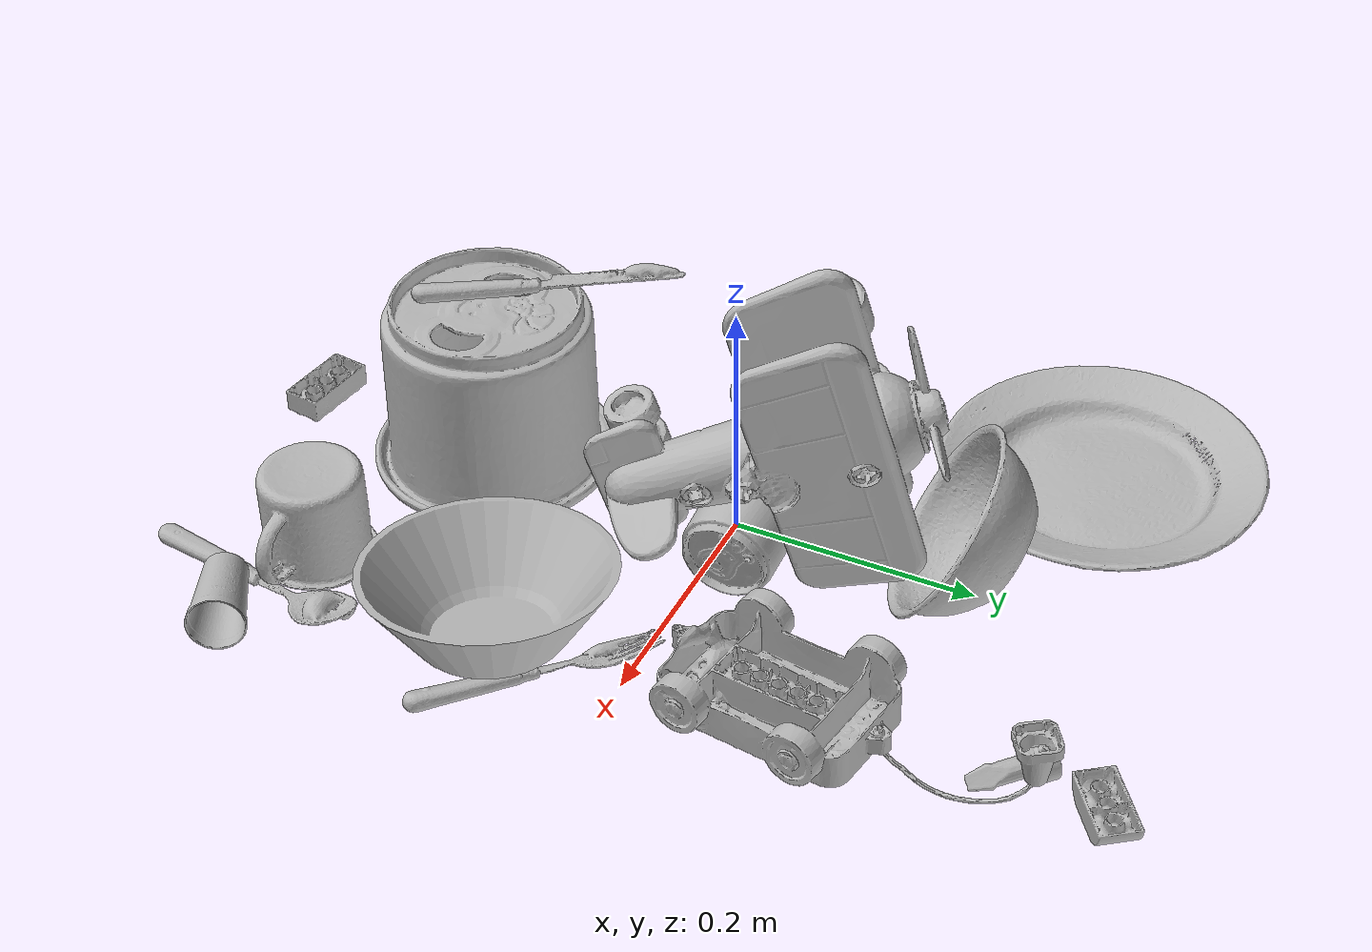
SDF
<sdf version="1.4">
  <world name="default">
    <light name="light1" type="point">
      <pose>0 0 1 0 0 0</pose>
      <diffuse>3 3 3 1</diffuse>
      <specular>3 3 3 1</specular>
    </light>
    <light name="light2" type="point">
      <pose>0 0.5 2 0 0 0</pose>
      <diffuse>1 1 1 1</diffuse>
      <specular>1 1 1 1</specular>
    </light>
    <light name="light3" type="point">
      <pose>0 0.5 2 0 0 0</pose>
      <diffuse>3 3 3 1</diffuse>
      <specular>3 3 3 1</specular>
    </light>
    <scene>
      <ambient>0.7 0.7 0.7</ambient>
    </scene>
    <model name="plate1">
      <link name="link_plate1">
        <collision name="default">
          <geometry>
            <mesh>
              <uri>model://plate/collision_meshes/collision.obj</uri>
              <scale>1.0 1.0 1.0</scale>
            </mesh>
          </geometry>
          <surface>
            <friction>
              <ode>
                <mu>0.5</mu>
                <mu2>0.5</mu2>
              </ode>
            </friction>
          <contact>
        <ode>
            <max_vel>0</max_vel>
            <min_depth>0.0001</min_depth>
            <kp>1e8</kp>
        </ode>
    </contact></surface>
        </collision>
        <visual name="default">
          <geometry>
            <mesh>
              <uri>model://plate/visual_meshes/visual.dae</uri>
              <scale>1.0 1.0 1.0</scale>
            </mesh>
          </geometry>
        </visual>
        <inertial>
          <mass>0.22833794355392456</mass>
          <pose>-0.000604461005423218 0.00027825840516015887 -0.0010561991948634386 0.0022188074693480237 -0.003225470002654536 0.4526028307495764</pose>
          <inertia>
            <ixx>0.0010681693</ixx>
            <iyy>0.0010579526</iyy>
            <izz>0.0020891798</izz>
            <ixy>0</ixy>
            <ixz>0</ixz>
            <iyz>0</iyz>
          </inertia>
        </inertial>
      </link>
      <pose>-0.16608424484729767 0.24436883628368378 0.013733004219830036 -6.372449657711393e-08 1.8270535182034328e-08 0.308425541323336</pose>
    </model>
    <model name="cup1">
      <link name="link_cup1">
        <collision name="default">
          <geometry>
            <mesh>
              <uri>model://i_cups/collision_meshes/collision.obj</uri>
              <scale>2.0 2.0 2.0</scale>
            </mesh>
          </geometry>
          <surface>
            <friction>
              <ode>
                <mu>0.5</mu>
                <mu2>0.5</mu2>
              </ode>
            </friction>
          <contact>
        <ode>
            <max_vel>0</max_vel>
            <min_depth>0.0001</min_depth>
            <kp>1e8</kp>
        </ode>
    </contact></surface>
        </collision>
        <visual name="default">
          <geometry>
            <mesh>
              <uri>model://i_cups/visual_meshes/visual.dae</uri>
              <scale>2.0 2.0 2.0</scale>
            </mesh>
          </geometry>
        </visual>
        <inertial>
          <mass>0.4681873917579651</mass>
          <pose>0.00022480281768366694 0.00033594679553061724 -0.001715805265121162 -0.028982833374769763 -0.039873302367341296 -0.3459182567321849</pose>
          <inertia>
            <ixx>0.0025928493</ixx>
            <iyy>0.0026156942</iyy>
            <izz>0.0028979292</izz>
            <ixy>0</ixy>
            <ixz>0</ixz>
            <iyz>0</iyz>
          </inertia>
        </inertial>
      </link>
      <pose>-0.0008929219911806285 -0.2145640254020691 0.07586603611707687 3.1415925762302432 3.1628533490727345e-08 0.2808637464603246</pose>
    </model>
    <model name="silverware1">
      <link name="link_silverware1">
        <collision name="default">
          <geometry>
            <mesh>
              <uri>model://fork/collision_meshes/collision.obj</uri>
              <scale>1.0 1.0 1.0</scale>
            </mesh>
          </geometry>
          <surface>
            <friction>
              <ode>
                <mu>0.5</mu>
                <mu2>0.5</mu2>
              </ode>
            </friction>
          <contact>
        <ode>
            <max_vel>0</max_vel>
            <min_depth>0.0001</min_depth>
            <kp>1e8</kp>
        </ode>
    </contact></surface>
        </collision>
        <visual name="default">
          <geometry>
            <mesh>
              <uri>model://fork/visual_meshes/visual.dae</uri>
              <scale>1.0 1.0 1.0</scale>
            </mesh>
          </geometry>
        </visual>
        <inertial>
          <mass>0.027571624144911766</mass>
          <pose>-0.02957003377377987 0.00046588233090005815 0.00032188609475269914 -0.013550958023284024 -0.010977835737993834 0.014453901364285019</pose>
          <inertia>
            <ixx>9.665413e-07</ixx>
            <iyy>7.198156e-05</iyy>
            <izz>7.24139e-05</izz>
            <ixy>0</ixy>
            <ixz>0</ixz>
            <iyz>0</iyz>
          </inertia>
        </inertial>
      </link>
      <pose>0.21967339515686035 -0.060371994972229004 0.005740980617702007 -0.18974120027024236 0.024207896405835285 2.362839508209796</pose>
    </model>
    <model name="silverware2">
      <link name="link_silverware2">
        <collision name="default">
          <geometry>
            <mesh>
              <uri>model://spoon/collision_meshes/collision.obj</uri>
              <scale>1.0 1.0 1.0</scale>
            </mesh>
          </geometry>
          <surface>
            <friction>
              <ode>
                <mu>0.5</mu>
                <mu2>0.5</mu2>
              </ode>
            </friction>
          <contact>
        <ode>
            <max_vel>0</max_vel>
            <min_depth>0.0001</min_depth>
            <kp>1e8</kp>
        </ode>
    </contact></surface>
        </collision>
        <visual name="default">
          <geometry>
            <mesh>
              <uri>model://spoon/visual_meshes/visual.dae</uri>
              <scale>1.0 1.0 1.0</scale>
            </mesh>
          </geometry>
        </visual>
        <inertial>
          <mass>0.026229728013277054</mass>
          <pose>-0.005526318680495024 -0.001603417913429439 -0.0007271656068041921 0.03521671072465583 -0.039065837568760656 0.006150610113583586</pose>
          <inertia>
            <ixx>1.4589405e-06</ixx>
            <iyy>9.980327e-05</iyy>
            <izz>0.00010052276</izz>
            <ixy>0</ixy>
            <ixz>0</ixz>
            <iyz>0</iyz>
          </inertia>
        </inertial>
      </link>
      <pose>0.21517613530158997 -0.30097049474716187 0.008385262452065945 0.006728789678429573 0.026892985116295762 1.419226343131296</pose>
    </model>
    <model name="silverware3">
      <link name="link_silverware3">
        <collision name="default">
          <geometry>
            <mesh>
              <uri>model://knife/collision_meshes/collision.obj</uri>
              <scale>1.0 1.0 1.0</scale>
            </mesh>
          </geometry>
          <surface>
            <friction>
              <ode>
                <mu>0.5</mu>
                <mu2>0.5</mu2>
              </ode>
            </friction>
          <contact>
        <ode>
            <max_vel>0</max_vel>
            <min_depth>0.0001</min_depth>
            <kp>1e8</kp>
        </ode>
    </contact></surface>
        </collision>
        <visual name="default">
          <geometry>
            <mesh>
              <uri>model://knife/visual_meshes/visual.dae</uri>
              <scale>1.0 1.0 1.0</scale>
            </mesh>
          </geometry>
        </visual>
        <inertial>
          <mass>0.02346421591937542</mass>
          <pose>-0.02378525584936142 0.0015275125624611974 5.062017953605391e-05 0.07305400797241687 0.017248417900584085 -0.007409820985288758</pose>
          <inertia>
            <ixx>6.6600956e-07</ixx>
            <iyy>9.0145724e-05</iyy>
            <izz>9.036023e-05</izz>
            <ixy>0</ixy>
            <ixz>0</ixz>
            <iyz>0</iyz>
          </inertia>
        </inertial>
      </link>
      <pose>-0.04279060661792755 -0.18163558840751648 0.15168538689613342 3.0400634617277698 -0.03347054470260083 2.090116782963929</pose>
    </model>
    <model name="cup3">
      <link name="link_cup3">
        <collision name="default">
          <geometry>
            <mesh>
              <uri>model://g_cups/collision_meshes/collision.obj</uri>
              <scale>1.0 1.0 1.0</scale>
            </mesh>
          </geometry>
          <surface>
            <friction>
              <ode>
                <mu>0.5</mu>
                <mu2>0.5</mu2>
              </ode>
            </friction>
          <contact>
        <ode>
            <max_vel>0</max_vel>
            <min_depth>0.0001</min_depth>
            <kp>1e8</kp>
        </ode>
    </contact></surface>
        </collision>
        <visual name="default">
          <geometry>
            <mesh>
              <uri>model://g_cups/visual_meshes/visual.dae</uri>
              <scale>1.0 1.0 1.0</scale>
            </mesh>
          </geometry>
        </visual>
        <inertial>
          <mass>0.061065707355737686</mass>
          <pose>-0.0007946277037262917 -4.2064726585522294e-05 -0.002132938476279378 -0.21381528234109023 -0.31410608856426947 0.31118675593786127</pose>
          <inertia>
            <ixx>7.1277376e-05</ixx>
            <iyy>7.10349e-05</iyy>
            <izz>7.383109e-05</izz>
            <ixy>0</ixy>
            <ixz>0</ixz>
            <iyz>0</iyz>
          </inertia>
        </inertial>
      </link>
      <pose>0.04718034341931343 0.026792937889695168 0.04013412073254585 -1.4486686996178213 0.522660675459487 1.6523192085728096</pose>
    </model>
    <model name="cup4">
      <link name="link_cup4">
        <collision name="default">
          <geometry>
            <mesh>
              <uri>model://mug/collision_meshes/collision.obj</uri>
              <scale>1.0 1.0 1.0</scale>
            </mesh>
          </geometry>
          <surface>
            <friction>
              <ode>
                <mu>0.5</mu>
                <mu2>0.5</mu2>
              </ode>
            </friction>
          <contact>
        <ode>
            <max_vel>0</max_vel>
            <min_depth>0.0001</min_depth>
            <kp>1e8</kp>
        </ode>
    </contact></surface>
        </collision>
        <visual name="default">
          <geometry>
            <mesh>
              <uri>model://mug/visual_meshes/visual.dae</uri>
              <scale>1.0 1.0 1.0</scale>
            </mesh>
          </geometry>
        </visual>
        <inertial>
          <mass>0.23807048797607422</mass>
          <pose>0.009571674279868603 0.0008143257582560182 -0.010947330854833126 -0.1298314387661624 0.08737745525079747 0.05507303490292968</pose>
          <inertia>
            <ixx>0.00023648023</ixx>
            <iyy>0.0002641344</iyy>
            <izz>0.00030547503</izz>
            <ixy>0</ixy>
            <ixz>0</ixz>
            <iyz>0</iyz>
          </inertia>
        </inertial>
      </link>
      <pose>0.1773107498884201 -0.2797479033470154 0.04095804691314697 3.1415924598286895 7.774553684708807e-09 3.1305157716410856</pose>
    </model>
    <model name="cup5">
      <link name="link_cup5">
        <collision name="default">
          <geometry>
            <mesh>
              <uri>model://cup_small/collision_meshes/collision.obj</uri>
              <scale>1.0 1.0 1.0</scale>
            </mesh>
          </geometry>
          <surface>
            <friction>
              <ode>
                <mu>0.5</mu>
                <mu2>0.5</mu2>
              </ode>
            </friction>
          <contact>
        <ode>
            <max_vel>0</max_vel>
            <min_depth>0.0001</min_depth>
            <kp>1e8</kp>
        </ode>
    </contact></surface>
        </collision>
        <visual name="default">
          <geometry>
            <mesh>
              <uri>model://cup_small/visual_meshes/visual.dae</uri>
              <scale>1.0 1.0 1.0</scale>
            </mesh>
          </geometry>
        </visual>
        <inertial>
          <mass>0.034257128834724426</mass>
          <pose>0.00010482469951966777 -0.00033778377110138535 -0.01074282731860876 -0.011493012610900502 -0.015280351102743797 -0.5058271067899499</pose>
          <inertia>
            <ixx>2.0170073e-05</ixx>
            <iyy>2.0274121e-05</iyy>
            <izz>9.106847e-06</izz>
            <ixy>0</ixy>
            <ixz>0</ixz>
            <iyz>0</iyz>
          </inertia>
        </inertial>
      </link>
      <pose>0.2590985894203186 -0.3043558895587921 0.01966186612844467 -1.4784318361090683 0.06252550919205825 -1.0705766561296395</pose>
    </model>
    <model name="bowl1">
      <link name="link_bowl1">
        <collision name="default">
          <geometry>
            <mesh>
              <uri>model://bowl/collision_meshes/collision.obj</uri>
              <scale>1.0 1.0 1.0</scale>
            </mesh>
          </geometry>
          <surface>
            <friction>
              <ode>
                <mu>0.5</mu>
                <mu2>0.5</mu2>
              </ode>
            </friction>
          <contact>
        <ode>
            <max_vel>0</max_vel>
            <min_depth>0.0001</min_depth>
            <kp>1e8</kp>
        </ode>
    </contact></surface>
        </collision>
        <visual name="default">
          <geometry>
            <mesh>
              <uri>model://bowl/visual_meshes/visual.dae</uri>
              <scale>1.0 1.0 1.0</scale>
            </mesh>
          </geometry>
        </visual>
        <inertial>
          <mass>0.06465846300125122</mass>
          <pose>0.0002044529392151162 -0.0010302059818059206 -0.0008042643894441426 -0.015764115524798613 0.014546769889283702 0.7140385686011532</pose>
          <inertia>
            <ixx>0.00014852564</ixx>
            <iyy>0.000145207</iyy>
            <izz>0.00024987117</izz>
            <ixy>0</ixy>
            <ixz>0</ixz>
            <iyz>0</iyz>
          </inertia>
        </inertial>
      </link>
      <pose>-0.00020891742315143347 0.195132777094841 0.058876022696495056 -0.31629332312928593 -1.031022304598755 2.2465112032189154</pose>
    </model>
    <model name="bowl2">
      <link name="link_bowl2">
        <collision name="default">
          <geometry>
            <mesh>
              <uri>model://bowl_a/collision_meshes/collision.obj</uri>
              <scale>1.0 1.0 1.0</scale>
            </mesh>
          </geometry>
          <surface>
            <friction>
              <ode>
                <mu>0.5</mu>
                <mu2>0.5</mu2>
              </ode>
            </friction>
          <contact>
        <ode>
            <max_vel>0</max_vel>
            <min_depth>0.0001</min_depth>
            <kp>1e8</kp>
        </ode>
    </contact></surface>
        </collision>
        <visual name="default">
          <geometry>
            <mesh>
              <uri>model://bowl_a/visual_meshes/visual.dae</uri>
              <scale>1.0 1.0 1.0</scale>
            </mesh>
          </geometry>
        </visual>
        <inertial>
          <mass>0.4949932396411896</mass>
          <pose>0.00027867621975019574 4.730939326691441e-05 -0.0013765293406322598 -0.0009805412802391578 -0.001093824733375575 -0.19123603072484788</pose>
          <inertia>
            <ixx>0.0014092687</ixx>
            <iyy>0.0014179207</iyy>
            <izz>0.0025064375</izz>
            <ixy>0</ixy>
            <ixz>0</ixz>
            <iyz>0</iyz>
          </inertia>
        </inertial>
      </link>
      <pose>0.19572806358337402 -0.10874178260564804 0.037308599799871445 -0.12360870068533286 0.042703240903791705 2.4276583941091596</pose>
    </model>
    <model name="toy1">
      <link name="link_toy1">
        <collision name="default">
          <geometry>
            <mesh>
              <uri>model://a_toy_airplane/collision_meshes/collision.obj</uri>
              <scale>1.0 1.0 1.0</scale>
            </mesh>
          </geometry>
          <surface>
            <friction>
              <ode>
                <mu>0.5</mu>
                <mu2>0.5</mu2>
              </ode>
            </friction>
          <contact>
        <ode>
            <max_vel>0</max_vel>
            <min_depth>0.0001</min_depth>
            <kp>1e8</kp>
        </ode>
    </contact></surface>
        </collision>
        <visual name="default">
          <geometry>
            <mesh>
              <uri>model://a_toy_airplane/visual_meshes/visual.dae</uri>
              <scale>1.0 1.0 1.0</scale>
            </mesh>
          </geometry>
        </visual>
        <inertial>
          <mass>1.5726872682571411</mass>
          <pose>0.025165090337395668 -0.003707318101078272 -0.0011962441494688392 -0.012016975653996446 -0.14663502644886817 0.00414906395026872</pose>
          <inertia>
            <ixx>0.0057111816</ixx>
            <iyy>0.008322349</iyy>
            <izz>0.009744448</izz>
            <ixy>0</ixy>
            <ixz>0</ixz>
            <iyz>0</iyz>
          </inertia>
        </inertial>
      </link>
      <pose>0.03672716021537781 0.04380052536725998 0.12035838514566422 1.6522512464968244 -0.27710689662899934 2.2468807017260013</pose>
    </model>
    <model name="toy2">
      <link name="link_toy2">
        <collision name="default">
          <geometry>
            <mesh>
              <uri>model://g_lego_duplo/collision_meshes/collision.obj</uri>
              <scale>1.0 1.0 1.0</scale>
            </mesh>
          </geometry>
          <surface>
            <friction>
              <ode>
                <mu>0.5</mu>
                <mu2>0.5</mu2>
              </ode>
            </friction>
          <contact>
        <ode>
            <max_vel>0</max_vel>
            <min_depth>0.0001</min_depth>
            <kp>1e8</kp>
        </ode>
    </contact></surface>
        </collision>
        <visual name="default">
          <geometry>
            <mesh>
              <uri>model://g_lego_duplo/visual_meshes/visual.dae</uri>
              <scale>1.0 1.0 1.0</scale>
            </mesh>
          </geometry>
        </visual>
        <inertial>
          <mass>0.27239978313446045</mass>
          <pose>-0.05004768446087837 0.0017554647056385875 0.003880675882101059 0.010962999716487856 0.03810827607734427 -0.09653019061870628</pose>
          <inertia>
            <ixx>0.00039471043</ixx>
            <iyy>0.0011933373</iyy>
            <izz>0.0014929089</izz>
            <ixy>0</ixy>
            <ixz>0</ixz>
            <iyz>0</iyz>
          </inertia>
        </inertial>
      </link>
      <pose>0.1875120848417282 0.17763853073120117 0.027629228308796883 -3.1415828262167813 -0.030278473930236097 1.4107920356626986</pose>
    </model>
    <model name="toy3">
      <link name="link_toy3">
        <collision name="default">
          <geometry>
            <mesh>
              <uri>model://e_toy_airplane/collision_meshes/collision.obj</uri>
              <scale>1.0 1.0 1.0</scale>
            </mesh>
          </geometry>
          <surface>
            <friction>
              <ode>
                <mu>0.5</mu>
                <mu2>0.5</mu2>
              </ode>
            </friction>
          <contact>
        <ode>
            <max_vel>0</max_vel>
            <min_depth>0.0001</min_depth>
            <kp>1e8</kp>
        </ode>
    </contact></surface>
        </collision>
        <visual name="default">
          <geometry>
            <mesh>
              <uri>model://e_toy_airplane/visual_meshes/visual.dae</uri>
              <scale>1.0 1.0 1.0</scale>
            </mesh>
          </geometry>
        </visual>
        <inertial>
          <mass>0.02767481654882431</mass>
          <pose>0.00011740472837118432 -2.2482989152194932e-05 -0.011187202297151089 0.005518508312800945 0.009228282632666047 0.1504154330375105</pose>
          <inertia>
            <ixx>8.446671e-06</ixx>
            <iyy>8.360266e-06</iyy>
            <izz>2.5385568e-06</izz>
            <ixy>0</ixy>
            <ixz>0</ixz>
            <iyz>0</iyz>
          </inertia>
        </inertial>
      </link>
      <pose>0.1752084642648697 0.2907630503177643 0.014469463378190994 -1.6350884482198336 0.7320004091393314 -2.401611834694393</pose>
    </model>
    <model name="toy4">
      <link name="link_toy4">
        <collision name="default">
          <geometry>
            <mesh>
              <uri>model://c_lego_duplo/collision_meshes/collision.obj</uri>
              <scale>1.0 1.0 1.0</scale>
            </mesh>
          </geometry>
          <surface>
            <friction>
              <ode>
                <mu>0.5</mu>
                <mu2>0.5</mu2>
              </ode>
            </friction>
          <contact>
        <ode>
            <max_vel>0</max_vel>
            <min_depth>0.0001</min_depth>
            <kp>1e8</kp>
        </ode>
    </contact></surface>
        </collision>
        <visual name="default">
          <geometry>
            <mesh>
              <uri>model://c_lego_duplo/visual_meshes/visual.dae</uri>
              <scale>1.0 1.0 1.0</scale>
            </mesh>
          </geometry>
        </visual>
        <inertial>
          <mass>0.027596205472946167</mass>
          <pose>0.0003164597146678716 0.00019464619981590658 0.0010453155264258385 -0.011520800817134696 0.005900104067849837 0.03110033537421094</pose>
          <inertia>
            <ixx>1.0619538e-05</ixx>
            <iyy>3.3922634e-06</iyy>
            <izz>1.2410018e-05</izz>
            <ixy>0</ixy>
            <ixz>0</ixz>
            <iyz>0</iyz>
          </inertia>
        </inertial>
      </link>
      <pose>-0.003275342285633087 -0.37708187103271484 0.011915639974176884 -3.1353946161489548 -0.0012362694810519948 -1.6839687764686515</pose>
    </model>
    <model name="toy5">
      <link name="link_toy5">
        <collision name="default">
          <geometry>
            <mesh>
              <uri>model://a_lego_duplo/collision_meshes/collision.obj</uri>
              <scale>1.0 1.0 1.0</scale>
            </mesh>
          </geometry>
          <surface>
            <friction>
              <ode>
                <mu>0.5</mu>
                <mu2>0.5</mu2>
              </ode>
            </friction>
          <contact>
        <ode>
            <max_vel>0</max_vel>
            <min_depth>0.0001</min_depth>
            <kp>1e8</kp>
        </ode>
    </contact></surface>
        </collision>
        <visual name="default">
          <geometry>
            <mesh>
              <uri>model://a_lego_duplo/visual_meshes/visual.dae</uri>
              <scale>1.0 1.0 1.0</scale>
            </mesh>
          </geometry>
        </visual>
        <inertial>
          <mass>0.011767913587391376</mass>
          <pose>-0.00011337622709106654 0.00018517576972953975 0.0003692608152050525 -0.0141170192796563 -0.00012565406274383194 6.140908251533293e-05</pose>
          <inertia>
            <ixx>1.5087408e-06</ixx>
            <iyy>3.3799095e-06</iyy>
            <izz>4.186769e-06</izz>
            <ixy>0</ixy>
            <ixz>0</ixz>
            <iyz>0</iyz>
          </inertia>
        </inertial>
      </link>
      <pose>0.1827969253063202 0.36360639333724976 0.012124786153435707 -3.141285107482274 -0.015583089584517283 0.6154507564702305</pose>
    </model>
  <physics type="ode">
      <max_contacts>50</max_contacts>
      <ode>
        <solver>
          <type>quick</type>
          <iters>75</iters>
        </solver>
        <constraints>
          <contact_max_correcting_vel>0</contact_max_correcting_vel>
          <contact_surface_layer>0</contact_surface_layer>
        </constraints>
      </ode>
    </physics></world>
</sdf>
